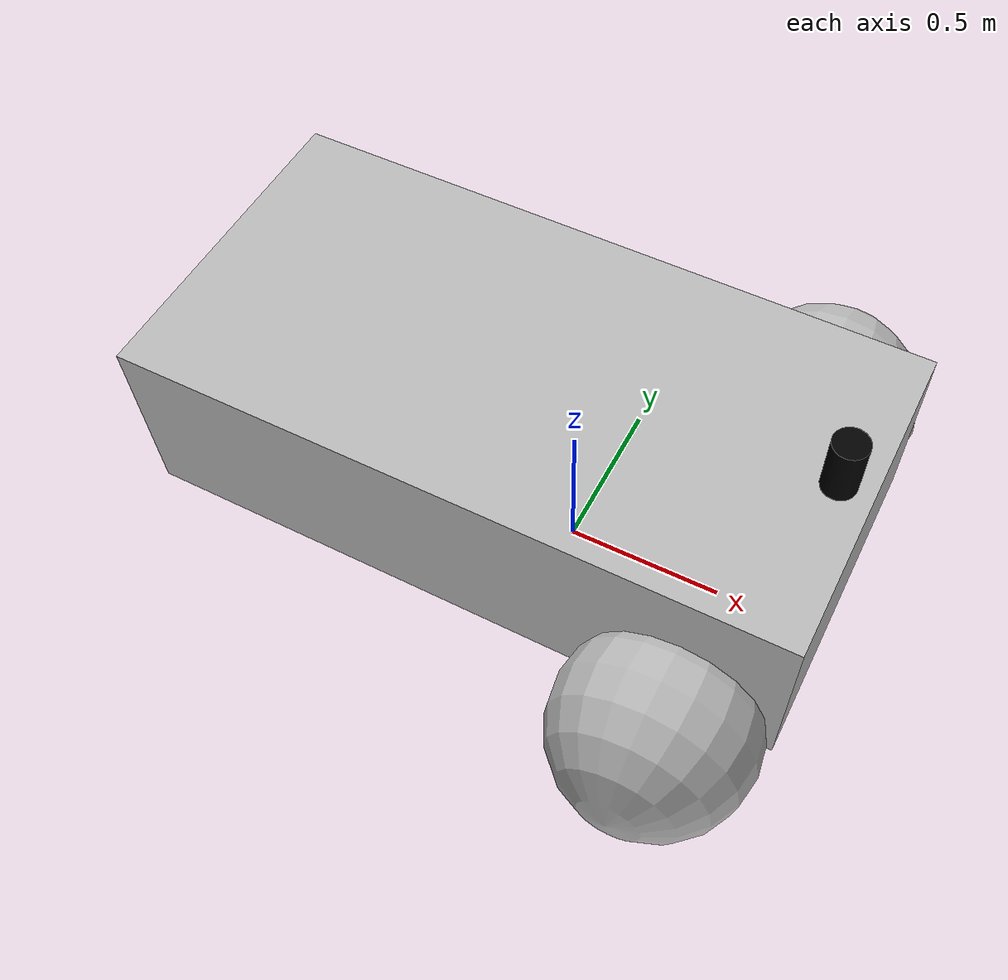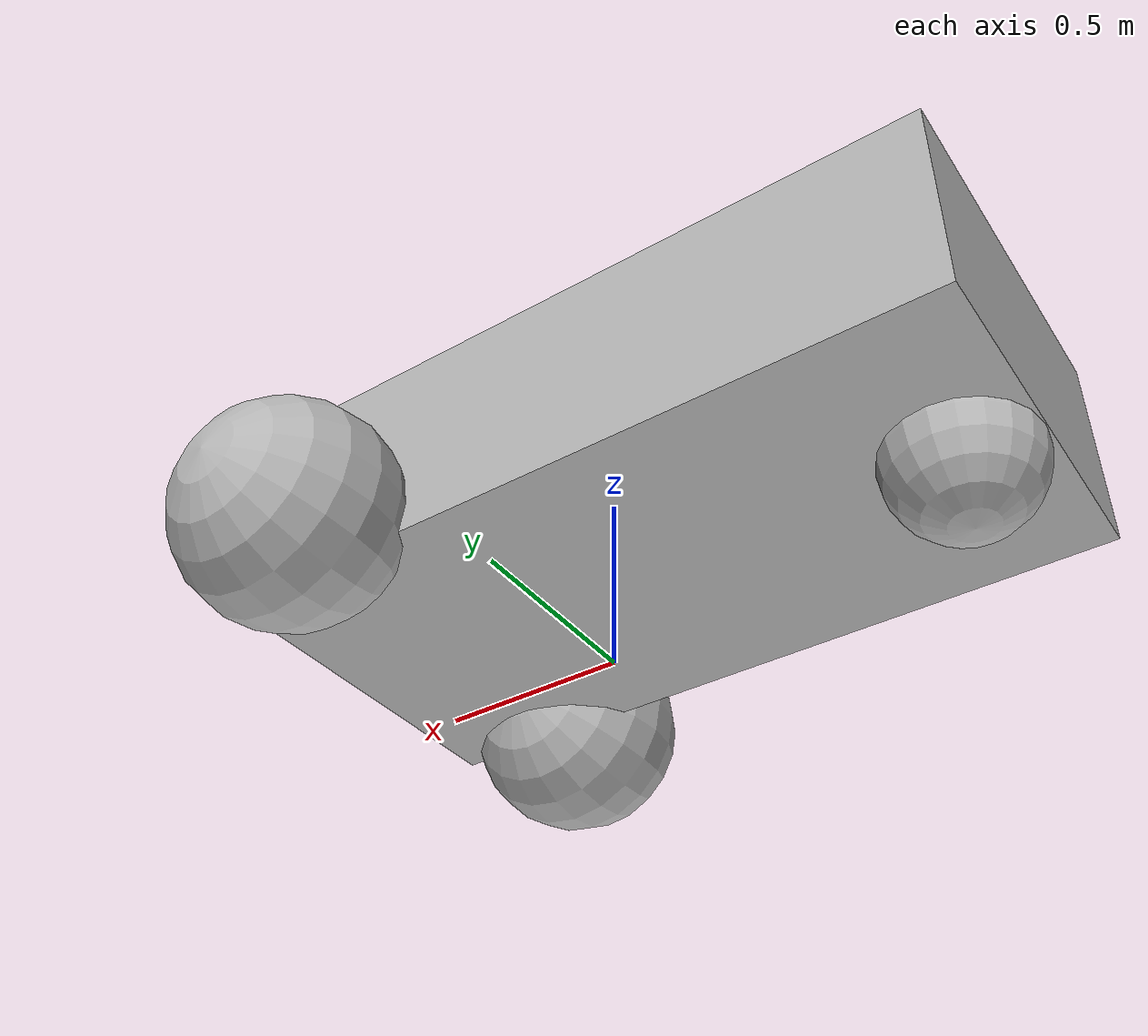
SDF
<?xml version="1.0"?>
<sdf version="1.6">

    <model name='dogJr'>
      <pose>0 0 0.325 0 -0 0</pose>

      <link name='chassis'>
        <pose>-0.151427 -0 0.175 0 -0 0</pose>
        <inertial>
          <mass>1.14395</mass>
          <inertia>
            <ixx>0.126164</ixx>
            <ixy>0</ixy>
            <ixz>0</ixz>
            <iyy>0.416519</iyy>
            <iyz>0</iyz>
            <izz>0.481014</izz>
          </inertia>
        </inertial>
        <visual name='visual'>
          <geometry>
            <box>
              <size>2.01142 1 0.568726</size>
            </box>
          </geometry>
        </visual>
        <collision name='collision'>
          <geometry>
            <box>
              <size>2.01142 1 0.568726</size>
            </box>
          </geometry>
        </collision>
      </link>

      <link name='left_wheel'>
        <pose>0.554283 0.625029 -0.025 -1.5707 0 0</pose>
        <inertial>
          <mass>2</mass>
          <inertia>
            <ixx>0.145833</ixx>
            <ixy>0</ixy>
            <ixz>0</ixz>
            <iyy>0.145833</iyy>
            <iyz>0</iyz>
            <izz>0.125</izz>
          </inertia>
        </inertial>
        <visual name='visual'>
          <geometry>
            <sphere>
              <radius>0.3</radius>
            </sphere>
          </geometry>
        </visual>
        <collision name='collision'>
          <geometry>
            <sphere>
              <radius>0.3</radius>
            </sphere>
          </geometry>
          <surface>
            <friction>
              <ode>
                <mu>1</mu>
                <mu2>1</mu2>
                <slip1>0</slip1>
                <slip2>0</slip2>
              </ode>
            </friction>
            <contact>
              <ode>
                <soft_cfm>0</soft_cfm>
                <soft_erp>0.2</soft_erp>
                <kp>1e+13</kp>
                <kd>1</kd>
                <max_vel>0.01</max_vel>
                <min_depth>0.01</min_depth>
              </ode>
            </contact>
          </surface>
        </collision>
      </link>

      <link name='right_wheel'>
        <pose>0.554282 -0.625029 -0.025 -1.5707 0 0</pose>
        <inertial>
          <mass>2</mass>
          <inertia>
            <ixx>0.145833</ixx>
            <ixy>0</ixy>
            <ixz>0</ixz>
            <iyy>0.145833</iyy>
            <iyz>0</iyz>
            <izz>0.125</izz>
          </inertia>
        </inertial>
        <visual name='visual'>
          <geometry>
            <sphere>
              <radius>0.3</radius>
            </sphere>
          </geometry>
        </visual>
        <collision name='collision'>
          <geometry>
            <sphere>
              <radius>0.3</radius>
            </sphere>
          </geometry>
          <surface>
            <friction>
              <ode>
                <mu>1</mu>
                <mu2>1</mu2>
                <slip1>0</slip1>
                <slip2>0</slip2>
              </ode>
            </friction>
            <contact>
              <ode>
                <soft_cfm>0</soft_cfm>
                <soft_erp>0.2</soft_erp>
                <kp>1e+13</kp>
                <kd>1</kd>
                <max_vel>0.01</max_vel>
                <min_depth>0.01</min_depth>
              </ode>
            </contact>
          </surface>
        </collision>
      </link>

      <link name='caster'>
        <pose>-0.957138 -0 -0.125 0 -0 0</pose>
        <inertial>
          <mass>1</mass>
          <inertia>
            <ixx>0.1</ixx>
            <ixy>0</ixy>
            <ixz>0</ixz>
            <iyy>0.1</iyy>
            <iyz>0</iyz>
            <izz>0.1</izz>
          </inertia>
        </inertial>
        <visual name='visual'>
          <geometry>
            <sphere>
              <radius>0.2</radius>
            </sphere>
          </geometry>
        </visual>
        <collision name='collision'>
          <geometry>
            <sphere>
              <radius>0.2</radius>
            </sphere>
          </geometry>
        </collision>
      </link>

      <joint name='left_wheel_joint' type='revolute'>
        <parent>chassis</parent>
        <child>left_wheel</child>
        <axis>
          <xyz>0 0 1</xyz>
          <limit>
            <lower>-1.79769e+308</lower>
            <upper>1.79769e+308</upper>
          </limit>
        </axis>
      </joint>

      <joint name='right_wheel_joint' type='revolute'>
        <parent>chassis</parent>
        <child>right_wheel</child>
        <axis>
          <xyz>0 0 1</xyz>
          <limit>
            <lower>-1.79769e+308</lower>
            <upper>1.79769e+308</upper>
          </limit>
        </axis>
      </joint>

      <joint name='caster_wheel' type='ball'>
        <parent>chassis</parent>
        <child>caster</child>
      </joint>

      <plugin name='diff_drive' filename='libgazebo_ros_diff_drive.so'>

        <ros>
          <namespace>/demo</namespace>
          <remapping>cmd_vel:=cmd_demo</remapping>
          <remapping>odom:=odom_demo</remapping>
        </ros>

        <!-- wheels -->
        <left_joint>left_wheel_joint</left_joint>
        <right_joint>right_wheel_joint</right_joint>

        <!-- kinematics -->
        <wheel_separation>1.25</wheel_separation>
        <wheel_diameter>0.6</wheel_diameter>

        <!-- limits -->
        <max_wheel_torque>20</max_wheel_torque>
        <max_wheel_acceleration>1.0</max_wheel_acceleration>

        <!-- output -->
        <publish_odom>true</publish_odom>
        <publish_odom_tf>true</publish_odom_tf>
        <publish_wheel_tf>true</publish_wheel_tf>

        <odometry_frame>odom_demo</odometry_frame>
        <robot_base_frame>chassis</robot_base_frame>

      </plugin>

       <!-- ****************************** LIDAR *****************************    -->
       <link name="lidar_link">
         <inertial>
           <pose>0.755 0 0.55 0 0 0</pose>
           <inertia>
             <ixx>0.001</ixx>
             <ixy>0.000</ixy>
             <ixz>0.000</ixz>
             <iyy>0.001</iyy>
             <iyz>0.000</iyz>
             <izz>0.001</izz>
           </inertia>
           <mass>0.114</mass>
         </inertial>

         <collision name="lidar_collision">
           <pose>0.755 0 0.55 0 0 0</pose>
           <geometry>
             <cylinder>
               <radius>0.0508</radius>
               <length>0.18</length>
             </cylinder>
           </geometry>
         </collision>

         <visual name="lidar_visual">
           <pose>0.755 0 0.55 0 0 0</pose>
           <geometry>
             <cylinder>
               <radius>0.0508</radius>
               <length>0.18</length>
             </cylinder>
           </geometry>
           <material>
             <ambient>0.0 0.0 0.0 1.0</ambient>
             <diffuse>0.0 0.0 0.0 1.0</diffuse>
             <specular>0.0 0.0 0.0 1.0</specular>
             <emissive>0.0 0.0 0.0 1.0</emissive>
           </material>
         </visual>

         <sensor name="lidar" type="ray">
           <pose>0.755 0 0.615 0 0 0</pose>
           <always_on>true</always_on>
           <visualize>true</visualize>
           <update_rate>5</update_rate>
           <ray>
             <scan>
               <horizontal>
                 <samples>30</samples>
                 <resolution>1.00000</resolution>
                 <min_angle>-0.5235987756</min_angle>
                 <max_angle>0.5235987756</max_angle>
               </horizontal>
             </scan>
             <range>
               <min>0.120000</min>
               <max>3.5</max>
               <resolution>0.015000</resolution>
             </range>
             <noise>
               <type>gaussian</type>
               <mean>0.0</mean>
               <stddev>0.01</stddev>
             </noise>
           </ray>
           <plugin name="scan" filename="libgazebo_ros_ray_sensor.so">
             <ros>
               <remapping>~/out:=scan</remapping>
             </ros>
             <output_type>sensor_msgs/LaserScan</output_type>
             <frame_name>lidar_link</frame_name>
           </plugin>
         </sensor>
       </link>

       <!-- ****************************** LIDAR *****************************    -->

        <!-- ***** LIDAR JOINT ***** -->
       <joint name="lidar_joint" type="fixed">
         <parent>chassis</parent>
         <child>lidar_link</child>
         <pose>0.755 0 0.46 0 0 0</pose>
         <axis>
          <xyz>0 0 1</xyz>
         </axis>
       </joint>

    </model>
</sdf>
